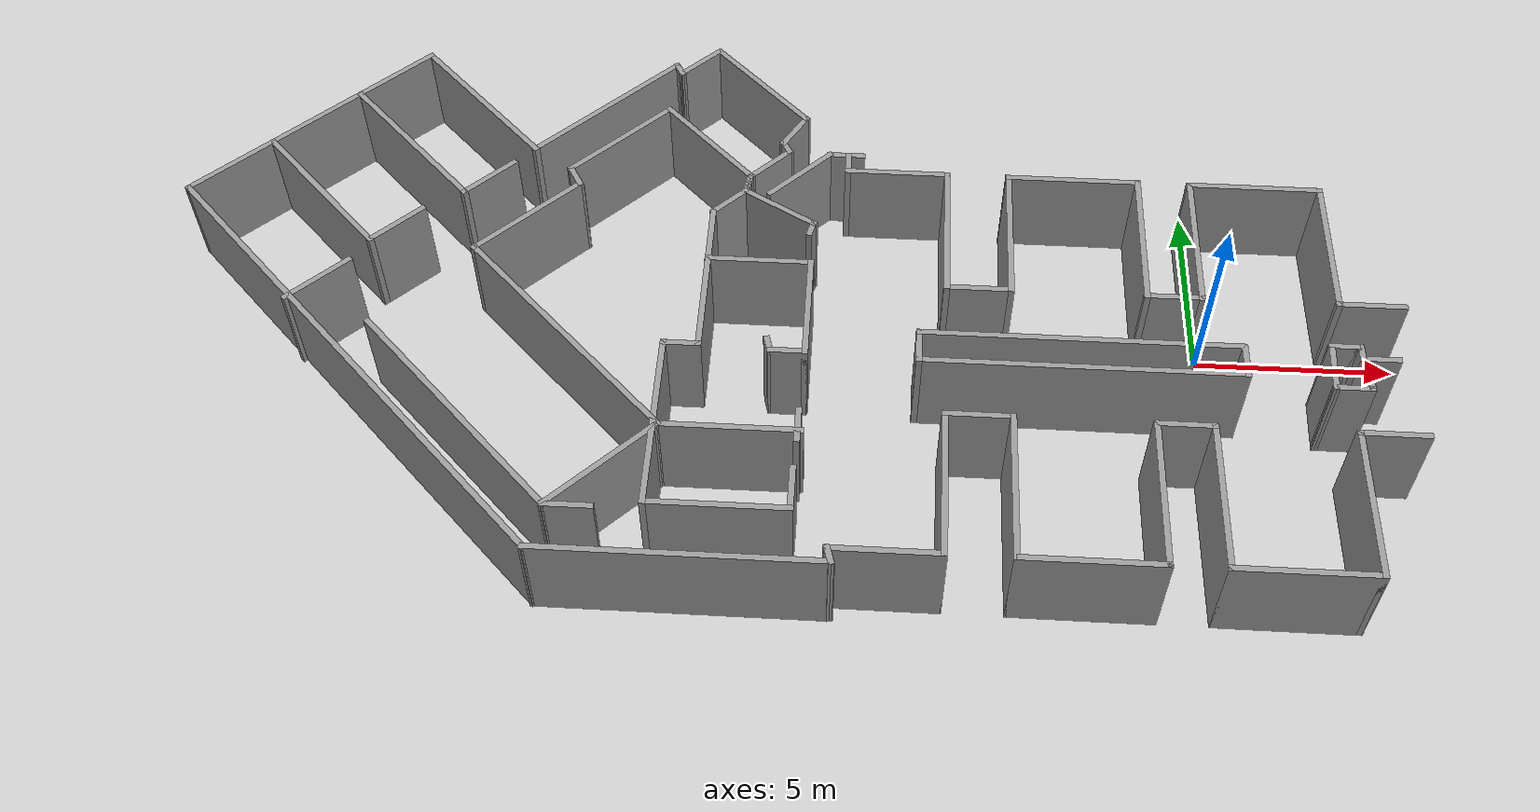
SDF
<sdf version="1.6">
 <world name="default">
  <model name="ground_plane">
   <static>1</static>
   <link name="link">
    <collision name="collision">
     <geometry><plane><normal>0 0 1</normal><size>100 100</size></plane></geometry>
     <surface>
      <contact><collide_bitmask>65535</collide_bitmask></contact>
      <friction><ode><mu>100</mu><mu2>50</mu2></ode></friction>
     </surface>
    </collision>
    <visual name="visual">
     <cast_shadows>0</cast_shadows>
     <geometry><plane><normal>0 0 1</normal><size>100 100</size></plane></geometry>
     <material>
      <script><uri>file://media/materials/scripts/gazebo.material</uri><name>Gazebo/Grey</name></script>
     </material>
    </visual>
   </link>
  </model>
  <model name="planta">
   <pose>-0.447226 0.100458 0 0 -0 0</pose>
   <link name="Wall_1">
    <collision name="Wall_1_Collision">
     <geometry><box><size>8 0.15 2.5</size></box></geometry>
     <pose>0 0 1.25 0 -0 0</pose>
    </collision>
    <visual name="Wall_1_Visual">
     <pose>0 0 1.25 0 -0 0</pose>
     <geometry><box><size>8 0.15 2.5</size></box></geometry>
     <material>
      <script><uri>file://media/materials/scripts/gazebo.material</uri><name>Gazebo/Grey</name></script>
      <ambient>1 1 1 1</ambient>
     </material>
     <meta><layer>0</layer></meta>
    </visual>
    <pose>-2.78777 -1.43046 0 0 -0 0</pose>
   </link>
   <link name="Wall_123">
    <collision name="Wall_123_Collision">
     <geometry><box><size>7 0.15 2.5</size></box></geometry>
     <pose>0 0 1.25 0 -0 0</pose>
    </collision>
    <visual name="Wall_123_Visual">
     <pose>0 0 1.25 0 -0 0</pose>
     <geometry><box><size>7 0.15 2.5</size></box></geometry>
     <material>
      <script><uri>file://media/materials/scripts/gazebo.material</uri><name>Gazebo/Grey</name></script>
      <ambient>1 1 1 1</ambient>
     </material>
     <meta><layer>0</layer></meta>
    </visual>
    <pose>-12.0058 -8.04911 0 0 -0 3.14159</pose>
   </link>
   <link name="Wall_125">
    <collision name="Wall_125_Collision">
     <geometry><box><size>14.75 0.15 2.5</size></box></geometry>
     <pose>0 0 1.25 0 -0 0</pose>
    </collision>
    <visual name="Wall_125_Visual">
     <pose>0 0 1.25 0 -0 0</pose>
     <geometry><box><size>14.75 0.15 2.5</size></box></geometry>
     <material>
      <script><uri>file://media/materials/scripts/gazebo.material</uri><name>Gazebo/Grey</name></script>
      <ambient>1 1 1 1</ambient>
     </material>
     <meta><layer>0</layer></meta>
    </visual>
    <pose>-20.5927 -2.88723 0 0 -0 2.35619</pose>
   </link>
   <link name="Wall_126">
    <collision name="Wall_126_Collision">
     <geometry><box><size>7.75 0.15 2.5</size></box></geometry>
     <pose>0 0 1.25 0 -0 0</pose>
    </collision>
    <visual name="Wall_126_Visual">
     <pose>0 0 1.25 0 -0 0</pose>
     <geometry><box><size>7.75 0.15 2.5</size></box></geometry>
     <material>
      <script><uri>file://media/materials/scripts/gazebo.material</uri><name>Gazebo/Grey</name></script>
      <ambient>1 1 1 1</ambient>
     </material>
     <meta><layer>0</layer></meta>
    </visual>
    <pose>-23.0676 4.96166 0 0 -0 0.785398</pose>
   </link>
   <link name="Wall_127">
    <collision name="Wall_127_Collision">
     <geometry><box><size>5 0.15 2.5</size></box></geometry>
     <pose>0 0 1.25 0 -0 0</pose>
    </collision>
    <visual name="Wall_127_Visual">
     <pose>0 0 1.25 0 -0 0</pose>
     <geometry><box><size>5 0.15 2.5</size></box></geometry>
     <material>
      <script><uri>file://media/materials/scripts/gazebo.material</uri><name>Gazebo/Grey</name></script>
      <ambient>1 1 1 1</ambient>
     </material>
     <meta><layer>0</layer></meta>
    </visual>
    <pose>-18.6658 5.93393 0 0 -0 -0.785398</pose>
   </link>
   <link name="Wall_128">
    <collision name="Wall_128_Collision">
     <geometry><box><size>5 0.15 2.5</size></box></geometry>
     <pose>0 0 1.25 0 -0 0</pose>
    </collision>
    <visual name="Wall_128_Visual">
     <pose>0 0 1.25 0 -0 0</pose>
     <geometry><box><size>5 0.15 2.5</size></box></geometry>
     <material>
      <script><uri>file://media/materials/scripts/gazebo.material</uri><name>Gazebo/Grey</name></script>
      <ambient>1 1 1 1</ambient>
     </material>
     <meta><layer>0</layer></meta>
    </visual>
    <pose>-15.2364 5.93393 0 0 -0 0.785398</pose>
   </link>
   <link name="Wall_129">
    <collision name="Wall_129_Collision">
     <geometry><box><size>0.5 0.15 2.5</size></box></geometry>
     <pose>0 0 1.25 0 -0 0</pose>
    </collision>
    <visual name="Wall_129_Visual">
     <pose>0 0 1.25 0 -0 0</pose>
     <geometry><box><size>0.5 0.15 2.5</size></box></geometry>
     <material>
      <script><uri>file://media/materials/scripts/gazebo.material</uri><name>Gazebo/Grey</name></script>
      <ambient>1 1 1 1</ambient>
     </material>
     <meta><layer>0</layer></meta>
    </visual>
    <pose>-13.4341 7.49711 0 0 -0 -1.0472</pose>
   </link>
   <link name="Wall_130">
    <collision name="Wall_130_Collision">
     <geometry><box><size>1.5 0.15 2.5</size></box></geometry>
     <pose>0 0 1.25 0 -0 0</pose>
    </collision>
    <visual name="Wall_130_Visual">
     <pose>0 0 1.25 0 -0 0</pose>
     <geometry><box><size>1.5 0.15 2.5</size></box></geometry>
     <material>
      <script><uri>file://media/materials/scripts/gazebo.material</uri><name>Gazebo/Grey</name></script>
      <ambient>1 1 1 1</ambient>
     </material>
     <meta><layer>0</layer></meta>
    </visual>
    <pose>-12.8693 7.82285 0 0 -0 0.785398</pose>
   </link>
   <link name="Wall_131">
    <collision name="Wall_131_Collision">
     <geometry><box><size>3.75 0.15 2.5</size></box></geometry>
     <pose>0 0 1.25 0 -0 0</pose>
    </collision>
    <visual name="Wall_131_Visual">
     <pose>0 0 1.25 0 -0 0</pose>
     <geometry><box><size>3.75 0.15 2.5</size></box></geometry>
     <material>
      <script><uri>file://media/materials/scripts/gazebo.material</uri><name>Gazebo/Grey</name></script>
      <ambient>1 1 1 1</ambient>
     </material>
     <meta><layer>0</layer></meta>
    </visual>
    <pose>-11.1192 7.02735 0 0 -0 -0.785398</pose>
   </link>
   <link name="Wall_132">
    <collision name="Wall_132_Collision">
     <geometry><box><size>1.25 0.15 2.5</size></box></geometry>
     <pose>0 0 1.25 0 -0 0</pose>
    </collision>
    <visual name="Wall_132_Visual">
     <pose>0 0 1.25 0 -0 0</pose>
     <geometry><box><size>1.25 0.15 2.5</size></box></geometry>
     <material>
      <script><uri>file://media/materials/scripts/gazebo.material</uri><name>Gazebo/Grey</name></script>
      <ambient>1 1 1 1</ambient>
     </material>
     <meta><layer>0</layer></meta>
    </visual>
    <pose>-10.1214 5.27825 0 0 -0 -2.0944</pose>
   </link>
   <link name="Wall_133">
    <collision name="Wall_133_Collision">
     <geometry><box><size>0.5 0.15 2.5</size></box></geometry>
     <pose>0 0 1.25 0 -0 0</pose>
    </collision>
    <visual name="Wall_133_Visual">
     <pose>0 0 1.25 0 -0 0</pose>
     <geometry><box><size>0.5 0.15 2.5</size></box></geometry>
     <material>
      <script><uri>file://media/materials/scripts/gazebo.material</uri><name>Gazebo/Grey</name></script>
      <ambient>1 1 1 1</ambient>
     </material>
     <meta><layer>0</layer></meta>
    </visual>
    <pose>-10.3089 4.65038 0 0 -0 -1.0472</pose>
   </link>
   <link name="Wall_134">
    <collision name="Wall_134_Collision">
     <geometry><box><size>1.5 0.15 2.5</size></box></geometry>
     <pose>0 0 1.25 0 -0 0</pose>
    </collision>
    <visual name="Wall_134_Visual">
     <pose>0 0 1.25 0 -0 0</pose>
     <geometry><box><size>1.5 0.15 2.5</size></box></geometry>
     <material>
      <script><uri>file://media/materials/scripts/gazebo.material</uri><name>Gazebo/Grey</name></script>
      <ambient>1 1 1 1</ambient>
     </material>
     <meta><layer>0</layer></meta>
    </visual>
    <pose>-10.6987 4.02153 0 0 -0 -2.35619</pose>
   </link>
   <link name="Wall_135">
    <collision name="Wall_135_Collision">
     <geometry><box><size>3.5 0.15 2.5</size></box></geometry>
     <pose>0 0 1.25 0 -0 0</pose>
    </collision>
    <visual name="Wall_135_Visual">
     <pose>0 0 1.25 0 -0 0</pose>
     <geometry><box><size>3.5 0.15 2.5</size></box></geometry>
     <material>
      <script><uri>file://media/materials/scripts/gazebo.material</uri><name>Gazebo/Grey</name></script>
      <ambient>1 1 1 1</ambient>
     </material>
     <meta><layer>0</layer></meta>
    </visual>
    <pose>-12.3604 4.72863 0 0 -0 2.35619</pose>
   </link>
   <link name="Wall_136">
    <collision name="Wall_136_Collision">
     <geometry><box><size>3.5 0.15 2.5</size></box></geometry>
     <pose>0 0 1.25 0 -0 0</pose>
    </collision>
    <visual name="Wall_136_Visual">
     <pose>0 0 1.25 0 -0 0</pose>
     <geometry><box><size>3.5 0.15 2.5</size></box></geometry>
     <material>
      <script><uri>file://media/materials/scripts/gazebo.material</uri><name>Gazebo/Grey</name></script>
      <ambient>1 1 1 1</ambient>
     </material>
     <meta><layer>0</layer></meta>
    </visual>
    <pose>-14.7292 4.72863 0 0 -0 -2.35619</pose>
   </link>
   <link name="Wall_137">
    <collision name="Wall_137_Collision">
     <geometry><box><size>0.75 0.15 2.5</size></box></geometry>
     <pose>0 0 1.25 0 -0 0</pose>
    </collision>
    <visual name="Wall_137_Visual">
     <pose>0 0 1.25 0 -0 0</pose>
     <geometry><box><size>0.75 0.15 2.5</size></box></geometry>
     <material>
      <script><uri>file://media/materials/scripts/gazebo.material</uri><name>Gazebo/Grey</name></script>
      <ambient>1 1 1 1</ambient>
     </material>
     <meta><layer>0</layer></meta>
    </visual>
    <pose>-15.7636 3.28442 0 0 -0 -1.0472</pose>
   </link>
   <link name="Wall_138">
    <collision name="Wall_138_Collision">
     <geometry><box><size>3.5 0.15 2.5</size></box></geometry>
     <pose>0 0 1.25 0 -0 0</pose>
    </collision>
    <visual name="Wall_138_Visual">
     <pose>0 0 1.25 0 -0 0</pose>
     <geometry><box><size>3.5 0.15 2.5</size></box></geometry>
     <material>
      <script><uri>file://media/materials/scripts/gazebo.material</uri><name>Gazebo/Grey</name></script>
      <ambient>1 1 1 1</ambient>
     </material>
     <meta><layer>0</layer></meta>
    </visual>
    <pose>-16.7981 1.84021 0 0 -0 -2.35619</pose>
   </link>
   <link name="Wall_139">
    <collision name="Wall_139_Collision">
     <geometry><box><size>7.5 0.15 2.5</size></box></geometry>
     <pose>0 0 1.25 0 -0 0</pose>
    </collision>
    <visual name="Wall_139_Visual">
     <pose>0 0 1.25 0 -0 0</pose>
     <geometry><box><size>7.5 0.15 2.5</size></box></geometry>
     <material>
      <script><uri>file://media/materials/scripts/gazebo.material</uri><name>Gazebo/Grey</name></script>
      <ambient>1 1 1 1</ambient>
     </material>
     <meta><layer>0</layer></meta>
    </visual>
    <pose>-15.3838 -1.94281 0 0 -0 -0.785398</pose>
   </link>
   <link name="Wall_140">
    <collision name="Wall_140_Collision">
     <geometry><box><size>3.5 0.15 2.5</size></box></geometry>
     <pose>0 0 1.25 0 -0 0</pose>
    </collision>
    <visual name="Wall_140_Visual">
     <pose>0 0 1.25 0 -0 0</pose>
     <geometry><box><size>3.5 0.15 2.5</size></box></geometry>
     <material>
      <script><uri>file://media/materials/scripts/gazebo.material</uri><name>Gazebo/Grey</name></script>
      <ambient>1 1 1 1</ambient>
     </material>
     <meta><layer>0</layer></meta>
    </visual>
    <pose>-13.9696 -5.72583 0 0 -0 -2.35619</pose>
   </link>
   <link name="Wall_141">
    <collision name="Wall_141_Collision">
     <geometry><box><size>7.25 0.15 2.5</size></box></geometry>
     <pose>0 0 1.25 0 -0 0</pose>
    </collision>
    <visual name="Wall_141_Visual">
     <pose>0 0 1.25 0 -0 0</pose>
     <geometry><box><size>7.25 0.15 2.5</size></box></geometry>
     <material>
      <script><uri>file://media/materials/scripts/gazebo.material</uri><name>Gazebo/Grey</name></script>
      <ambient>1 1 1 1</ambient>
     </material>
     <meta><layer>0</layer></meta>
    </visual>
    <pose>-17.6643 -4.40001 0 0 -0 2.35619</pose>
   </link>
   <link name="Wall_143">
    <collision name="Wall_143_Collision">
     <geometry><box><size>2 0.15 2.5</size></box></geometry>
     <pose>0 0 1.25 0 -0 0</pose>
    </collision>
    <visual name="Wall_143_Visual">
     <pose>0 0 1.25 0 -0 0</pose>
     <geometry><box><size>2 0.15 2.5</size></box></geometry>
     <material>
      <script><uri>file://media/materials/scripts/gazebo.material</uri><name>Gazebo/Grey</name></script>
      <ambient>1 1 1 1</ambient>
     </material>
     <meta><layer>0</layer></meta>
    </visual>
    <pose>-21.7238 -0.595709 0 0 -0 0.785398</pose>
   </link>
   <link name="Wall_145">
    <collision name="Wall_145_Collision">
     <geometry><box><size>1.75 0.15 2.5</size></box></geometry>
     <pose>0 0 1.25 0 -0 0</pose>
    </collision>
    <visual name="Wall_145_Visual">
     <pose>0 0 1.25 0 -0 0</pose>
     <geometry><box><size>1.75 0.15 2.5</size></box></geometry>
     <material>
      <script><uri>file://media/materials/scripts/gazebo.material</uri><name>Gazebo/Grey</name></script>
      <ambient>1 1 1 1</ambient>
     </material>
     <meta><layer>0</layer></meta>
    </visual>
    <pose>-20.1131 1.33868 0 0 -0 0.785398</pose>
   </link>
   <link name="Wall_147">
    <collision name="Wall_147_Collision">
     <geometry><box><size>1.75 0.15 2.5</size></box></geometry>
     <pose>0 0 1.25 0 -0 0</pose>
    </collision>
    <visual name="Wall_147_Visual">
     <pose>0 0 1.25 0 -0 0</pose>
     <geometry><box><size>1.75 0.15 2.5</size></box></geometry>
     <material>
      <script><uri>file://media/materials/scripts/gazebo.material</uri><name>Gazebo/Grey</name></script>
      <ambient>1 1 1 1</ambient>
     </material>
     <meta><layer>0</layer></meta>
    </visual>
    <pose>-18.008 3.12011 0 0 -0 -2.35619</pose>
   </link>
   <link name="Wall_148">
    <collision name="Wall_148_Collision">
     <geometry><box><size>5 0.15 2.5</size></box></geometry>
     <pose>0 0 1.25 0 -0 0</pose>
    </collision>
    <visual name="Wall_148_Visual">
     <pose>0 0 1.25 0 -0 0</pose>
     <geometry><box><size>5 0.15 2.5</size></box></geometry>
     <material>
      <script><uri>file://media/materials/scripts/gazebo.material</uri><name>Gazebo/Grey</name></script>
      <ambient>1 1 1 1</ambient>
     </material>
     <meta><layer>0</layer></meta>
    </visual>
    <pose>-20.2884 4.26916 0 0 -0 2.35619</pose>
   </link>
   <link name="Wall_150">
    <collision name="Wall_150_Collision">
     <geometry><box><size>4.75 0.15 2.5</size></box></geometry>
     <pose>0 0 1.25 0 -0 0</pose>
    </collision>
    <visual name="Wall_150_Visual">
     <pose>0 0 1.25 0 -0 0</pose>
     <geometry><box><size>4.75 0.15 2.5</size></box></geometry>
     <material>
      <script><uri>file://media/materials/scripts/gazebo.material</uri><name>Gazebo/Grey</name></script>
      <ambient>1 1 1 1</ambient>
     </material>
     <meta><layer>0</layer></meta>
    </visual>
    <pose>-22.3051 2.39934 0 0 -0 2.35619</pose>
   </link>
   <link name="Wall_153">
    <collision name="Wall_153_Collision">
     <geometry><box><size>1.25 0.15 2.5</size></box></geometry>
     <pose>0 0 1.25 0 -0 0</pose>
    </collision>
    <visual name="Wall_153_Visual">
     <pose>0 0 1.25 0 -0 0</pose>
     <geometry><box><size>1.25 0.15 2.5</size></box></geometry>
     <material>
      <script><uri>file://media/materials/scripts/gazebo.material</uri><name>Gazebo/Grey</name></script>
      <ambient>1 1 1 1</ambient>
     </material>
     <meta><layer>0</layer></meta>
    </visual>
    <pose>-14.604 -6.91024 0 0 -0 0</pose>
   </link>
   <link name="Wall_155">
    <collision name="Wall_155_Collision">
     <geometry><box><size>3.5 0.15 2.5</size></box></geometry>
     <pose>0 0 1.25 0 -0 0</pose>
    </collision>
    <visual name="Wall_155_Visual">
     <pose>0 0 1.25 0 -0 0</pose>
     <geometry><box><size>3.5 0.15 2.5</size></box></geometry>
     <material>
      <script><uri>file://media/materials/scripts/gazebo.material</uri><name>Gazebo/Grey</name></script>
      <ambient>1 1 1 1</ambient>
     </material>
     <meta><layer>0</layer></meta>
    </visual>
    <pose>-11.2285 -6.71129 0 0 -0 3.14159</pose>
   </link>
   <link name="Wall_156">
    <collision name="Wall_156_Collision">
     <geometry><box><size>4.75 0.15 2.5</size></box></geometry>
     <pose>0 0 1.25 0 -0 0</pose>
    </collision>
    <visual name="Wall_156_Visual">
     <pose>0 0 1.25 0 -0 0</pose>
     <geometry><box><size>4.75 0.15 2.5</size></box></geometry>
     <material>
      <script><uri>file://media/materials/scripts/gazebo.material</uri><name>Gazebo/Grey</name></script>
      <ambient>1 1 1 1</ambient>
     </material>
     <meta><layer>0</layer></meta>
    </visual>
    <pose>-12.9035 -4.41129 0 0 -0 1.5708</pose>
   </link>
   <link name="Wall_157">
    <collision name="Wall_157_Collision">
     <geometry><box><size>1 0.15 2.5</size></box></geometry>
     <pose>0 0 1.25 0 -0 0</pose>
    </collision>
    <visual name="Wall_157_Visual">
     <pose>0 0 1.25 0 -0 0</pose>
     <geometry><box><size>1 0.15 2.5</size></box></geometry>
     <material>
      <script><uri>file://media/materials/scripts/gazebo.material</uri><name>Gazebo/Grey</name></script>
      <ambient>1 1 1 1</ambient>
     </material>
     <meta><layer>0</layer></meta>
    </visual>
    <pose>-12.4785 -2.11129 0 0 -0 0</pose>
   </link>
   <link name="Wall_158">
    <collision name="Wall_158_Collision">
     <geometry><box><size>4.5 0.15 2.5</size></box></geometry>
     <pose>0 0 1.25 0 -0 0</pose>
    </collision>
    <visual name="Wall_158_Visual">
     <pose>0 0 1.25 0 -0 0</pose>
     <geometry><box><size>4.5 0.15 2.5</size></box></geometry>
     <material>
      <script><uri>file://media/materials/scripts/gazebo.material</uri><name>Gazebo/Grey</name></script>
      <ambient>1 1 1 1</ambient>
     </material>
     <meta><layer>0</layer></meta>
    </visual>
    <pose>-12.0535 0.063714 0 0 -0 1.5708</pose>
   </link>
   <link name="Wall_159">
    <collision name="Wall_159_Collision">
     <geometry><box><size>1.25 0.15 2.5</size></box></geometry>
     <pose>0 0 1.25 0 -0 0</pose>
    </collision>
    <visual name="Wall_159_Visual">
     <pose>0 0 1.25 0 -0 0</pose>
     <geometry><box><size>1.25 0.15 2.5</size></box></geometry>
     <material>
      <script><uri>file://media/materials/scripts/gazebo.material</uri><name>Gazebo/Grey</name></script>
      <ambient>1 1 1 1</ambient>
     </material>
     <meta><layer>0</layer></meta>
    </visual>
    <pose>-11.6646 2.62762 0 0 -0 0.785398</pose>
   </link>
   <link name="Wall_160">
    <collision name="Wall_160_Collision">
     <geometry><box><size>0.687025 0.15 2.5</size></box></geometry>
     <pose>0 0 1.25 0 -0 0</pose>
    </collision>
    <visual name="Wall_160_Visual">
     <pose>0 0 1.25 0 -0 0</pose>
     <geometry><box><size>0.687025 0.15 2.5</size></box></geometry>
     <material>
      <script><uri>file://media/materials/scripts/gazebo.material</uri><name>Gazebo/Grey</name></script>
      <ambient>1 1 1 1</ambient>
     </material>
     <meta><layer>0</layer></meta>
    </visual>
    <pose>-11.2259 3.28038 0 0 -0 1.38416</pose>
   </link>
   <link name="Wall_161">
    <collision name="Wall_161_Collision">
     <geometry><box><size>0.687025 0.15 2.5</size></box></geometry>
     <pose>0 0 1.25 0 -0 0</pose>
    </collision>
    <visual name="Wall_161_Visual">
     <pose>0 0 1.25 0 -0 0</pose>
     <geometry><box><size>0.687025 0.15 2.5</size></box></geometry>
     <material>
      <script><uri>file://media/materials/scripts/gazebo.material</uri><name>Gazebo/Grey</name></script>
      <ambient>1 1 1 1</ambient>
     </material>
     <meta><layer>0</layer></meta>
    </visual>
    <pose>-11.2259 3.28038 0 0 -0 -1.75743</pose>
   </link>
   <link name="Wall_162">
    <collision name="Wall_162_Collision">
     <geometry><box><size>2.25 0.15 2.5</size></box></geometry>
     <pose>0 0 1.25 0 -0 0</pose>
    </collision>
    <visual name="Wall_162_Visual">
     <pose>0 0 1.25 0 -0 0</pose>
     <geometry><box><size>2.25 0.15 2.5</size></box></geometry>
     <material>
      <script><uri>file://media/materials/scripts/gazebo.material</uri><name>Gazebo/Grey</name></script>
      <ambient>1 1 1 1</ambient>
     </material>
     <meta><layer>0</layer></meta>
    </visual>
    <pose>-10.3664 2.49153 0 0 -0 -0.523599</pose>
   </link>
   <link name="Wall_163">
    <collision name="Wall_163_Collision">
     <geometry><box><size>0.5 0.15 2.5</size></box></geometry>
     <pose>0 0 1.25 0 -0 0</pose>
    </collision>
    <visual name="Wall_163_Visual">
     <pose>0 0 1.25 0 -0 0</pose>
     <geometry><box><size>0.5 0.15 2.5</size></box></geometry>
     <material>
      <script><uri>file://media/materials/scripts/gazebo.material</uri><name>Gazebo/Grey</name></script>
      <ambient>1 1 1 1</ambient>
     </material>
     <meta><layer>0</layer></meta>
    </visual>
    <pose>-9.50232 1.79749 0 0 -0 -1.8326</pose>
   </link>
   <link name="Wall_165">
    <collision name="Wall_165_Collision">
     <geometry><box><size>2.75 0.15 2.5</size></box></geometry>
     <pose>0 0 1.25 0 -0 0</pose>
    </collision>
    <visual name="Wall_165_Visual">
     <pose>0 0 1.25 0 -0 0</pose>
     <geometry><box><size>2.75 0.15 2.5</size></box></geometry>
     <material>
      <script><uri>file://media/materials/scripts/gazebo.material</uri><name>Gazebo/Grey</name></script>
      <ambient>1 1 1 1</ambient>
     </material>
     <meta><layer>0</layer></meta>
    </visual>
    <pose>-10.7617 0.651629 0 0 -0 0</pose>
   </link>
   <link name="Wall_166">
    <collision name="Wall_166_Collision">
     <geometry><box><size>3 0.15 2.5</size></box></geometry>
     <pose>0 0 1.25 0 -0 0</pose>
    </collision>
    <visual name="Wall_166_Visual">
     <pose>0 0 1.25 0 -0 0</pose>
     <geometry><box><size>3 0.15 2.5</size></box></geometry>
     <material>
      <script><uri>file://media/materials/scripts/gazebo.material</uri><name>Gazebo/Grey</name></script>
      <ambient>1 1 1 1</ambient>
     </material>
     <meta><layer>0</layer></meta>
    </visual>
    <pose>-9.46174 -0.773371 0 0 -0 -1.5708</pose>
   </link>
   <link name="Wall_167">
    <collision name="Wall_167_Collision">
     <geometry><box><size>1 0.15 2.5</size></box></geometry>
     <pose>0 0 1.25 0 -0 0</pose>
    </collision>
    <visual name="Wall_167_Visual">
     <pose>0 0 1.25 0 -0 0</pose>
     <geometry><box><size>1 0.15 2.5</size></box></geometry>
     <material>
      <script><uri>file://media/materials/scripts/gazebo.material</uri><name>Gazebo/Grey</name></script>
      <ambient>1 1 1 1</ambient>
     </material>
     <meta><layer>0</layer></meta>
    </visual>
    <pose>-9.88674 -2.19837 0 0 -0 3.14159</pose>
   </link>
   <link name="Wall_168">
    <collision name="Wall_168_Collision">
     <geometry><box><size>0.5 0.15 2.5</size></box></geometry>
     <pose>0 0 1.25 0 -0 0</pose>
    </collision>
    <visual name="Wall_168_Visual">
     <pose>0 0 1.25 0 -0 0</pose>
     <geometry><box><size>0.5 0.15 2.5</size></box></geometry>
     <material>
      <script><uri>file://media/materials/scripts/gazebo.material</uri><name>Gazebo/Grey</name></script>
      <ambient>1 1 1 1</ambient>
     </material>
     <meta><layer>0</layer></meta>
    </visual>
    <pose>-10.357 -2.02933 0 0 -0 1.8326</pose>
   </link>
   <link name="Wall_170">
    <collision name="Wall_170_Collision">
     <geometry><box><size>1.25 0.15 2.5</size></box></geometry>
     <pose>0 0 1.25 0 -0 0</pose>
    </collision>
    <visual name="Wall_170_Visual">
     <pose>0 0 1.25 0 -0 0</pose>
     <geometry><box><size>1.25 0.15 2.5</size></box></geometry>
     <material>
      <script><uri>file://media/materials/scripts/gazebo.material</uri><name>Gazebo/Grey</name></script>
      <ambient>1 1 1 1</ambient>
     </material>
     <meta><layer>0</layer></meta>
    </visual>
    <pose>-9.5535 -6.16129 0 0 -0 1.5708</pose>
   </link>
   <link name="Wall_172">
    <collision name="Wall_172_Collision">
     <geometry><box><size>3.5 0.15 2.5</size></box></geometry>
     <pose>0 0 1.25 0 -0 0</pose>
    </collision>
    <visual name="Wall_172_Visual">
     <pose>0 0 1.25 0 -0 0</pose>
     <geometry><box><size>3.5 0.15 2.5</size></box></geometry>
     <material>
      <script><uri>file://media/materials/scripts/gazebo.material</uri><name>Gazebo/Grey</name></script>
      <ambient>1 1 1 1</ambient>
     </material>
     <meta><layer>0</layer></meta>
    </visual>
    <pose>-11.1102 -4.54143 0 0 -0 0</pose>
   </link>
   <link name="Wall_174">
    <collision name="Wall_174_Collision">
     <geometry><box><size>1 0.15 2.5</size></box></geometry>
     <pose>0 0 1.25 0 -0 0</pose>
    </collision>
    <visual name="Wall_174_Visual">
     <pose>0 0 1.25 0 -0 0</pose>
     <geometry><box><size>1 0.15 2.5</size></box></geometry>
     <material>
      <script><uri>file://media/materials/scripts/gazebo.material</uri><name>Gazebo/Grey</name></script>
      <ambient>1 1 1 1</ambient>
     </material>
     <meta><layer>0</layer></meta>
    </visual>
    <pose>-9.51304 -4.38487 0 0 -0 1.5708</pose>
   </link>
   <link name="Wall_176">
    <collision name="Wall_176_Collision">
     <geometry><box><size>1 0.15 2.5</size></box></geometry>
     <pose>0 0 1.25 0 -0 0</pose>
    </collision>
    <visual name="Wall_176_Visual">
     <pose>0 0 1.25 0 -0 0</pose>
     <geometry><box><size>1 0.15 2.5</size></box></geometry>
     <material>
      <script><uri>file://media/materials/scripts/gazebo.material</uri><name>Gazebo/Grey</name></script>
      <ambient>1 1 1 1</ambient>
     </material>
     <meta><layer>0</layer></meta>
    </visual>
    <pose>-8.72438 4.45445 0 0 -0 3.14159</pose>
   </link>
   <link name="Wall_177">
    <collision name="Wall_177_Collision">
     <geometry><box><size>2.25 0.15 2.5</size></box></geometry>
     <pose>0 0 1.25 0 -0 0</pose>
    </collision>
    <visual name="Wall_177_Visual">
     <pose>0 0 1.25 0 -0 0</pose>
     <geometry><box><size>2.25 0.15 2.5</size></box></geometry>
     <material>
      <script><uri>file://media/materials/scripts/gazebo.material</uri><name>Gazebo/Grey</name></script>
      <ambient>1 1 1 1</ambient>
     </material>
     <meta><layer>0</layer></meta>
    </visual>
    <pose>-9.89184 3.71199 0 0 -0 -2.35619</pose>
   </link>
   <link name="Wall_2">
    <collision name="Wall_2_Collision">
     <geometry><box><size>1 0.15 2.5</size></box></geometry>
     <pose>0 0 1.25 0 -0 0</pose>
    </collision>
    <visual name="Wall_2_Visual">
     <pose>0 0 1.25 0 -0 0</pose>
     <geometry><box><size>1 0.15 2.5</size></box></geometry>
     <material>
      <script><uri>file://media/materials/scripts/gazebo.material</uri><name>Gazebo/Grey</name></script>
      <ambient>1 1 1 1</ambient>
     </material>
     <meta><layer>0</layer></meta>
    </visual>
    <pose>1.13723 -1.85546 0 0 -0 -1.5708</pose>
   </link>
   <link name="Wall_20">
    <collision name="Wall_20_Collision">
     <geometry><box><size>0.5 0.15 2.5</size></box></geometry>
     <pose>0 0 1.25 0 -0 0</pose>
    </collision>
    <visual name="Wall_20_Visual">
     <pose>0 0 1.25 0 -0 0</pose>
     <geometry><box><size>0.5 0.15 2.5</size></box></geometry>
     <material>
      <script><uri>file://media/materials/scripts/gazebo.material</uri><name>Gazebo/Grey</name></script>
      <ambient>1 1 1 1</ambient>
     </material>
     <meta><layer>0</layer></meta>
    </visual>
    <pose>4.03723 -2.36546 0 0 -0 -1.5708</pose>
   </link>
   <link name="Wall_21">
    <collision name="Wall_21_Collision">
     <geometry><box><size>1 0.15 2.5</size></box></geometry>
     <pose>0 0 1.25 0 -0 0</pose>
    </collision>
    <visual name="Wall_21_Visual">
     <pose>0 0 1.25 0 -0 0</pose>
     <geometry><box><size>1 0.15 2.5</size></box></geometry>
     <material>
      <script><uri>file://media/materials/scripts/gazebo.material</uri><name>Gazebo/Grey</name></script>
      <ambient>1 1 1 1</ambient>
     </material>
     <meta><layer>0</layer></meta>
    </visual>
    <pose>3.61223 -2.54046 0 0 -0 3.14159</pose>
   </link>
   <link name="Wall_22">
    <collision name="Wall_22_Collision">
     <geometry><box><size>1.401 0.15 2.5</size></box></geometry>
     <pose>0 0 1.25 0 -0 0</pose>
    </collision>
    <visual name="Wall_22_Visual">
     <pose>0 0 1.25 0 -0 0</pose>
     <geometry><box><size>1.401 0.15 2.5</size></box></geometry>
     <material>
      <script><uri>file://media/materials/scripts/gazebo.material</uri><name>Gazebo/Grey</name></script>
      <ambient>1 1 1 1</ambient>
     </material>
     <meta><layer>0</layer></meta>
    </visual>
    <pose>3.21223 -1.91546 0 0 -0 1.53082</pose>
   </link>
   <link name="Wall_3">
    <collision name="Wall_3_Collision">
     <geometry><box><size>8 0.15 2.5</size></box></geometry>
     <pose>0 0 1.25 0 -0 0</pose>
    </collision>
    <visual name="Wall_3_Visual">
     <pose>0 0 1.25 0 -0 0</pose>
     <geometry><box><size>8 0.15 2.5</size></box></geometry>
     <material>
      <script><uri>file://media/materials/scripts/gazebo.material</uri><name>Gazebo/Grey</name></script>
      <ambient>1 1 1 1</ambient>
     </material>
     <meta><layer>0</layer></meta>
    </visual>
    <pose>-2.78777 -2.28046 0 0 -0 3.14159</pose>
   </link>
   <link name="Wall_4">
    <collision name="Wall_4_Collision">
     <geometry><box><size>1 0.15 2.5</size></box></geometry>
     <pose>0 0 1.25 0 -0 0</pose>
    </collision>
    <visual name="Wall_4_Visual">
     <pose>0 0 1.25 0 -0 0</pose>
     <geometry><box><size>1 0.15 2.5</size></box></geometry>
     <material>
      <script><uri>file://media/materials/scripts/gazebo.material</uri><name>Gazebo/Grey</name></script>
      <ambient>1 1 1 1</ambient>
     </material>
     <meta><layer>0</layer></meta>
    </visual>
    <pose>-6.71277 -1.85546 0 0 -0 1.5708</pose>
   </link>
   <link name="Wall_56">
    <collision name="Wall_56_Collision">
     <geometry><box><size>1.75 0.15 2.5</size></box></geometry>
     <pose>0 0 1.25 0 -0 0</pose>
    </collision>
    <visual name="Wall_56_Visual">
     <pose>0 0 1.25 0 -0 0</pose>
     <geometry><box><size>1.75 0.15 2.5</size></box></geometry>
     <material>
      <script><uri>file://media/materials/scripts/gazebo.material</uri><name>Gazebo/Grey</name></script>
      <ambient>1 1 1 1</ambient>
     </material>
     <meta><layer>0</layer></meta>
    </visual>
    <pose>4.39549 0.044972 0 0 -0 3.14159</pose>
   </link>
   <link name="Wall_57">
    <collision name="Wall_57_Collision">
     <geometry><box><size>4 0.15 2.5</size></box></geometry>
     <pose>0 0 1.25 0 -0 0</pose>
    </collision>
    <visual name="Wall_57_Visual">
     <pose>0 0 1.25 0 -0 0</pose>
     <geometry><box><size>4 0.15 2.5</size></box></geometry>
     <material>
      <script><uri>file://media/materials/scripts/gazebo.material</uri><name>Gazebo/Grey</name></script>
      <ambient>1 1 1 1</ambient>
     </material>
     <meta><layer>0</layer></meta>
    </visual>
    <pose>3.59549 1.96997 0 0 -0 1.5708</pose>
   </link>
   <link name="Wall_58">
    <collision name="Wall_58_Collision">
     <geometry><box><size>3.5 0.15 2.5</size></box></geometry>
     <pose>0 0 1.25 0 -0 0</pose>
    </collision>
    <visual name="Wall_58_Visual">
     <pose>0 0 1.25 0 -0 0</pose>
     <geometry><box><size>3.5 0.15 2.5</size></box></geometry>
     <material>
      <script><uri>file://media/materials/scripts/gazebo.material</uri><name>Gazebo/Grey</name></script>
      <ambient>1 1 1 1</ambient>
     </material>
     <meta><layer>0</layer></meta>
    </visual>
    <pose>1.92049 3.89497 0 0 -0 3.14159</pose>
   </link>
   <link name="Wall_59">
    <collision name="Wall_59_Collision">
     <geometry><box><size>4 0.15 2.5</size></box></geometry>
     <pose>0 0 1.25 0 -0 0</pose>
    </collision>
    <visual name="Wall_59_Visual">
     <pose>0 0 1.25 0 -0 0</pose>
     <geometry><box><size>4 0.15 2.5</size></box></geometry>
     <material>
      <script><uri>file://media/materials/scripts/gazebo.material</uri><name>Gazebo/Grey</name></script>
      <ambient>1 1 1 1</ambient>
     </material>
     <meta><layer>0</layer></meta>
    </visual>
    <pose>0.245487 1.96997 0 0 -0 -1.5708</pose>
   </link>
   <link name="Wall_6">
    <collision name="Wall_6_Collision">
     <geometry><box><size>0.75 0.15 2.5</size></box></geometry>
     <pose>0 0 1.25 0 -0 0</pose>
    </collision>
    <visual name="Wall_6_Visual">
     <pose>0 0 1.25 0 -0 0</pose>
     <geometry><box><size>0.75 0.15 2.5</size></box></geometry>
     <material>
      <script><uri>file://media/materials/scripts/gazebo.material</uri><name>Gazebo/Grey</name></script>
      <ambient>1 1 1 1</ambient>
     </material>
     <meta><layer>0</layer></meta>
    </visual>
    <pose>3.53722 -1.29046 0 0 -0 0</pose>
   </link>
   <link name="Wall_60">
    <collision name="Wall_60_Collision">
     <geometry><box><size>1.5 0.15 2.5</size></box></geometry>
     <pose>0 0 1.25 0 -0 0</pose>
    </collision>
    <visual name="Wall_60_Visual">
     <pose>0 0 1.25 0 -0 0</pose>
     <geometry><box><size>1.5 0.15 2.5</size></box></geometry>
     <material>
      <script><uri>file://media/materials/scripts/gazebo.material</uri><name>Gazebo/Grey</name></script>
      <ambient>1 1 1 1</ambient>
     </material>
     <meta><layer>0</layer></meta>
    </visual>
    <pose>-0.429513 0.044972 0 0 -0 3.14159</pose>
   </link>
   <link name="Wall_61">
    <collision name="Wall_61_Collision">
     <geometry><box><size>4 0.15 2.5</size></box></geometry>
     <pose>0 0 1.25 0 -0 0</pose>
    </collision>
    <visual name="Wall_61_Visual">
     <pose>0 0 1.25 0 -0 0</pose>
     <geometry><box><size>4 0.15 2.5</size></box></geometry>
     <material>
      <script><uri>file://media/materials/scripts/gazebo.material</uri><name>Gazebo/Grey</name></script>
      <ambient>1 1 1 1</ambient>
     </material>
     <meta><layer>0</layer></meta>
    </visual>
    <pose>-1.10451 1.96997 0 0 -0 1.5708</pose>
   </link>
   <link name="Wall_62">
    <collision name="Wall_62_Collision">
     <geometry><box><size>3.5 0.15 2.5</size></box></geometry>
     <pose>0 0 1.25 0 -0 0</pose>
    </collision>
    <visual name="Wall_62_Visual">
     <pose>0 0 1.25 0 -0 0</pose>
     <geometry><box><size>3.5 0.15 2.5</size></box></geometry>
     <material>
      <script><uri>file://media/materials/scripts/gazebo.material</uri><name>Gazebo/Grey</name></script>
      <ambient>1 1 1 1</ambient>
     </material>
     <meta><layer>0</layer></meta>
    </visual>
    <pose>-2.77951 3.89497 0 0 -0 3.14159</pose>
   </link>
   <link name="Wall_63">
    <collision name="Wall_63_Collision">
     <geometry><box><size>4 0.15 2.5</size></box></geometry>
     <pose>0 0 1.25 0 -0 0</pose>
    </collision>
    <visual name="Wall_63_Visual">
     <pose>0 0 1.25 0 -0 0</pose>
     <geometry><box><size>4 0.15 2.5</size></box></geometry>
     <material>
      <script><uri>file://media/materials/scripts/gazebo.material</uri><name>Gazebo/Grey</name></script>
      <ambient>1 1 1 1</ambient>
     </material>
     <meta><layer>0</layer></meta>
    </visual>
    <pose>-4.45451 1.96997 0 0 -0 -1.5708</pose>
   </link>
   <link name="Wall_64">
    <collision name="Wall_64_Collision">
     <geometry><box><size>1.75 0.15 2.5</size></box></geometry>
     <pose>0 0 1.25 0 -0 0</pose>
    </collision>
    <visual name="Wall_64_Visual">
     <pose>0 0 1.25 0 -0 0</pose>
     <geometry><box><size>1.75 0.15 2.5</size></box></geometry>
     <material>
      <script><uri>file://media/materials/scripts/gazebo.material</uri><name>Gazebo/Grey</name></script>
      <ambient>1 1 1 1</ambient>
     </material>
     <meta><layer>0</layer></meta>
    </visual>
    <pose>-5.25451 0.044972 0 0 -0 3.14159</pose>
   </link>
   <link name="Wall_65">
    <collision name="Wall_65_Collision">
     <geometry><box><size>4 0.15 2.5</size></box></geometry>
     <pose>0 0 1.25 0 -0 0</pose>
    </collision>
    <visual name="Wall_65_Visual">
     <pose>0 0 1.25 0 -0 0</pose>
     <geometry><box><size>4 0.15 2.5</size></box></geometry>
     <material>
      <script><uri>file://media/materials/scripts/gazebo.material</uri><name>Gazebo/Grey</name></script>
      <ambient>1 1 1 1</ambient>
     </material>
     <meta><layer>0</layer></meta>
    </visual>
    <pose>-6.05451 1.96997 0 0 -0 1.5708</pose>
   </link>
   <link name="Wall_66">
    <collision name="Wall_66_Collision">
     <geometry><box><size>2.75 0.15 2.5</size></box></geometry>
     <pose>0 0 1.25 0 -0 0</pose>
    </collision>
    <visual name="Wall_66_Visual">
     <pose>0 0 1.25 0 -0 0</pose>
     <geometry><box><size>2.75 0.15 2.5</size></box></geometry>
     <material>
      <script><uri>file://media/materials/scripts/gazebo.material</uri><name>Gazebo/Grey</name></script>
      <ambient>1 1 1 1</ambient>
     </material>
     <meta><layer>0</layer></meta>
    </visual>
    <pose>-7.35451 3.89497 0 0 -0 3.14159</pose>
   </link>
   <link name="Wall_67">
    <collision name="Wall_67_Collision">
     <geometry><box><size>0.7 0.15 2.5</size></box></geometry>
     <pose>0 0 1.25 0 -0 0</pose>
    </collision>
    <visual name="Wall_67_Visual">
     <pose>0 0 1.25 0 -0 0</pose>
     <geometry><box><size>0.7 0.15 2.5</size></box></geometry>
     <material>
      <script><uri>file://media/materials/scripts/gazebo.material</uri><name>Gazebo/Grey</name></script>
      <ambient>1 1 1 1</ambient>
     </material>
     <meta><layer>0</layer></meta>
    </visual>
    <pose>-8.65451 4.16997 0 0 -0 1.5708</pose>
   </link>
   <link name="Wall_69">
    <collision name="Wall_69_Collision">
     <geometry><box><size>2.75 0.15 2.5</size></box></geometry>
     <pose>0 0 1.25 0 -0 0</pose>
    </collision>
    <visual name="Wall_69_Visual">
     <pose>0 0 1.25 0 -0 0</pose>
     <geometry><box><size>2.75 0.15 2.5</size></box></geometry>
     <material>
      <script><uri>file://media/materials/scripts/gazebo.material</uri><name>Gazebo/Grey</name></script>
      <ambient>1 1 1 1</ambient>
     </material>
     <meta><layer>0</layer></meta>
    </visual>
    <pose>-7.3808 -7.69911 0 0 -0 0</pose>
   </link>
   <link name="Wall_7">
    <collision name="Wall_7_Collision">
     <geometry><box><size>0.25 0.15 2.5</size></box></geometry>
     <pose>0 0 1.25 0 -0 0</pose>
    </collision>
    <visual name="Wall_7_Visual">
     <pose>0 0 1.25 0 -0 0</pose>
     <geometry><box><size>0.25 0.15 2.5</size></box></geometry>
     <material>
      <script><uri>file://media/materials/scripts/gazebo.material</uri><name>Gazebo/Grey</name></script>
      <ambient>1 1 1 1</ambient>
     </material>
     <meta><layer>0</layer></meta>
    </visual>
    <pose>3.88723 -1.29046 0 0 -0 0</pose>
   </link>
   <link name="Wall_70">
    <collision name="Wall_70_Collision">
     <geometry><box><size>4 0.15 2.5</size></box></geometry>
     <pose>0 0 1.25 0 -0 0</pose>
    </collision>
    <visual name="Wall_70_Visual">
     <pose>0 0 1.25 0 -0 0</pose>
     <geometry><box><size>4 0.15 2.5</size></box></geometry>
     <material>
      <script><uri>file://media/materials/scripts/gazebo.material</uri><name>Gazebo/Grey</name></script>
      <ambient>1 1 1 1</ambient>
     </material>
     <meta><layer>0</layer></meta>
    </visual>
    <pose>-6.08081 -5.77411 0 0 -0 1.5708</pose>
   </link>
   <link name="Wall_71">
    <collision name="Wall_71_Collision">
     <geometry><box><size>1.75 0.15 2.5</size></box></geometry>
     <pose>0 0 1.25 0 -0 0</pose>
    </collision>
    <visual name="Wall_71_Visual">
     <pose>0 0 1.25 0 -0 0</pose>
     <geometry><box><size>1.75 0.15 2.5</size></box></geometry>
     <material>
      <script><uri>file://media/materials/scripts/gazebo.material</uri><name>Gazebo/Grey</name></script>
      <ambient>1 1 1 1</ambient>
     </material>
     <meta><layer>0</layer></meta>
    </visual>
    <pose>-5.28081 -3.84911 0 0 -0 0</pose>
   </link>
   <link name="Wall_72">
    <collision name="Wall_72_Collision">
     <geometry><box><size>4 0.15 2.5</size></box></geometry>
     <pose>0 0 1.25 0 -0 0</pose>
    </collision>
    <visual name="Wall_72_Visual">
     <pose>0 0 1.25 0 -0 0</pose>
     <geometry><box><size>4 0.15 2.5</size></box></geometry>
     <material>
      <script><uri>file://media/materials/scripts/gazebo.material</uri><name>Gazebo/Grey</name></script>
      <ambient>1 1 1 1</ambient>
     </material>
     <meta><layer>0</layer></meta>
    </visual>
    <pose>-4.48081 -5.77411 0 0 -0 -1.5708</pose>
   </link>
   <link name="Wall_73">
    <collision name="Wall_73_Collision">
     <geometry><box><size>3.5 0.15 2.5</size></box></geometry>
     <pose>0 0 1.25 0 -0 0</pose>
    </collision>
    <visual name="Wall_73_Visual">
     <pose>0 0 1.25 0 -0 0</pose>
     <geometry><box><size>3.5 0.15 2.5</size></box></geometry>
     <material>
      <script><uri>file://media/materials/scripts/gazebo.material</uri><name>Gazebo/Grey</name></script>
      <ambient>1 1 1 1</ambient>
     </material>
     <meta><layer>0</layer></meta>
    </visual>
    <pose>-2.80581 -7.69911 0 0 -0 0</pose>
   </link>
   <link name="Wall_74">
    <collision name="Wall_74_Collision">
     <geometry><box><size>4 0.15 2.5</size></box></geometry>
     <pose>0 0 1.25 0 -0 0</pose>
    </collision>
    <visual name="Wall_74_Visual">
     <pose>0 0 1.25 0 -0 0</pose>
     <geometry><box><size>4 0.15 2.5</size></box></geometry>
     <material>
      <script><uri>file://media/materials/scripts/gazebo.material</uri><name>Gazebo/Grey</name></script>
      <ambient>1 1 1 1</ambient>
     </material>
     <meta><layer>0</layer></meta>
    </visual>
    <pose>-1.13081 -5.77411 0 0 -0 1.5708</pose>
   </link>
   <link name="Wall_75">
    <collision name="Wall_75_Collision">
     <geometry><box><size>1.5 0.15 2.5</size></box></geometry>
     <pose>0 0 1.25 0 -0 0</pose>
    </collision>
    <visual name="Wall_75_Visual">
     <pose>0 0 1.25 0 -0 0</pose>
     <geometry><box><size>1.5 0.15 2.5</size></box></geometry>
     <material>
      <script><uri>file://media/materials/scripts/gazebo.material</uri><name>Gazebo/Grey</name></script>
      <ambient>1 1 1 1</ambient>
     </material>
     <meta><layer>0</layer></meta>
    </visual>
    <pose>-0.455806 -3.84911 0 0 -0 0</pose>
   </link>
   <link name="Wall_76">
    <collision name="Wall_76_Collision">
     <geometry><box><size>4 0.15 2.5</size></box></geometry>
     <pose>0 0 1.25 0 -0 0</pose>
    </collision>
    <visual name="Wall_76_Visual">
     <pose>0 0 1.25 0 -0 0</pose>
     <geometry><box><size>4 0.15 2.5</size></box></geometry>
     <material>
      <script><uri>file://media/materials/scripts/gazebo.material</uri><name>Gazebo/Grey</name></script>
      <ambient>1 1 1 1</ambient>
     </material>
     <meta><layer>0</layer></meta>
    </visual>
    <pose>0.219194 -5.77411 0 0 -0 -1.5708</pose>
   </link>
   <link name="Wall_77">
    <collision name="Wall_77_Collision">
     <geometry><box><size>3.5 0.15 2.5</size></box></geometry>
     <pose>0 0 1.25 0 -0 0</pose>
    </collision>
    <visual name="Wall_77_Visual">
     <pose>0 0 1.25 0 -0 0</pose>
     <geometry><box><size>3.5 0.15 2.5</size></box></geometry>
     <material>
      <script><uri>file://media/materials/scripts/gazebo.material</uri><name>Gazebo/Grey</name></script>
      <ambient>1 1 1 1</ambient>
     </material>
     <meta><layer>0</layer></meta>
    </visual>
    <pose>1.89419 -7.69911 0 0 -0 0</pose>
   </link>
   <link name="Wall_78">
    <collision name="Wall_78_Collision">
     <geometry><box><size>4 0.15 2.5</size></box></geometry>
     <pose>0 0 1.25 0 -0 0</pose>
    </collision>
    <visual name="Wall_78_Visual">
     <pose>0 0 1.25 0 -0 0</pose>
     <geometry><box><size>4 0.15 2.5</size></box></geometry>
     <material>
      <script><uri>file://media/materials/scripts/gazebo.material</uri><name>Gazebo/Grey</name></script>
      <ambient>1 1 1 1</ambient>
     </material>
     <meta><layer>0</layer></meta>
    </visual>
    <pose>3.56919 -5.77411 0 0 -0 1.5708</pose>
   </link>
   <link name="Wall_79">
    <collision name="Wall_79_Collision">
     <geometry><box><size>1.75 0.15 2.5</size></box></geometry>
     <pose>0 0 1.25 0 -0 0</pose>
    </collision>
    <visual name="Wall_79_Visual">
     <pose>0 0 1.25 0 -0 0</pose>
     <geometry><box><size>1.75 0.15 2.5</size></box></geometry>
     <material>
      <script><uri>file://media/materials/scripts/gazebo.material</uri><name>Gazebo/Grey</name></script>
      <ambient>1 1 1 1</ambient>
     </material>
     <meta><layer>0</layer></meta>
    </visual>
    <pose>4.36919 -3.84911 0 0 -0 0</pose>
   </link>
   <link name="Wall_8">
    <collision name="Wall_8_Collision">
     <geometry><box><size>0.5 0.15 2.5</size></box></geometry>
     <pose>0 0 1.25 0 -0 0</pose>
    </collision>
    <visual name="Wall_8_Visual">
     <pose>0 0 1.25 0 -0 0</pose>
     <geometry><box><size>0.5 0.15 2.5</size></box></geometry>
     <material>
      <script><uri>file://media/materials/scripts/gazebo.material</uri><name>Gazebo/Grey</name></script>
      <ambient>1 1 1 1</ambient>
     </material>
     <meta><layer>0</layer></meta>
    </visual>
    <pose>3.93723 -1.46546 0 0 -0 -1.5708</pose>
   </link>
   <link name="Wall_9">
    <collision name="Wall_9_Collision">
     <geometry><box><size>1 0.15 2.5</size></box></geometry>
     <pose>0 0 1.25 0 -0 0</pose>
    </collision>
    <visual name="Wall_9_Visual">
     <pose>0 0 1.25 0 -0 0</pose>
     <geometry><box><size>1 0.15 2.5</size></box></geometry>
     <material>
      <script><uri>file://media/materials/scripts/gazebo.material</uri><name>Gazebo/Grey</name></script>
      <ambient>1 1 1 1</ambient>
     </material>
     <meta><layer>0</layer></meta>
    </visual>
    <pose>4.36223 -1.64046 0 0 -0 0</pose>
   </link>
   <link name="Wall_95">
    <collision name="Wall_95_Collision">
     <geometry><box><size>0.514005 0.15 2.5</size></box></geometry>
     <pose>0 0 1.25 0 -0 0</pose>
    </collision>
    <visual name="Wall_95_Visual">
     <pose>0 0 1.25 0 -0 0</pose>
     <geometry><box><size>0.514005 0.15 2.5</size></box></geometry>
     <material>
      <script><uri>file://media/materials/scripts/gazebo.material</uri><name>Gazebo/Grey</name></script>
      <ambient>1 1 1 1</ambient>
     </material>
     <meta><layer>0</layer></meta>
    </visual>
    <pose>-8.63081 -7.87411 0 0 -0 1.8491</pose>
   </link>
   <link name="Wall_96">
    <collision name="Wall_96_Collision">
     <geometry><box><size>2.75 0.15 2.5</size></box></geometry>
     <pose>0 0 1.25 0 -0 0</pose>
    </collision>
    <visual name="Wall_96_Visual">
     <pose>0 0 1.25 0 -0 0</pose>
     <geometry><box><size>2.75 0.15 2.5</size></box></geometry>
     <material>
      <script><uri>file://media/materials/scripts/gazebo.material</uri><name>Gazebo/Grey</name></script>
      <ambient>1 1 1 1</ambient>
     </material>
     <meta><layer>0</layer></meta>
    </visual>
    <pose>-7.3808 -7.69911 0 0 -0 0</pose>
   </link>
   <static>1</static>
  </model>
 </world>
</sdf>
